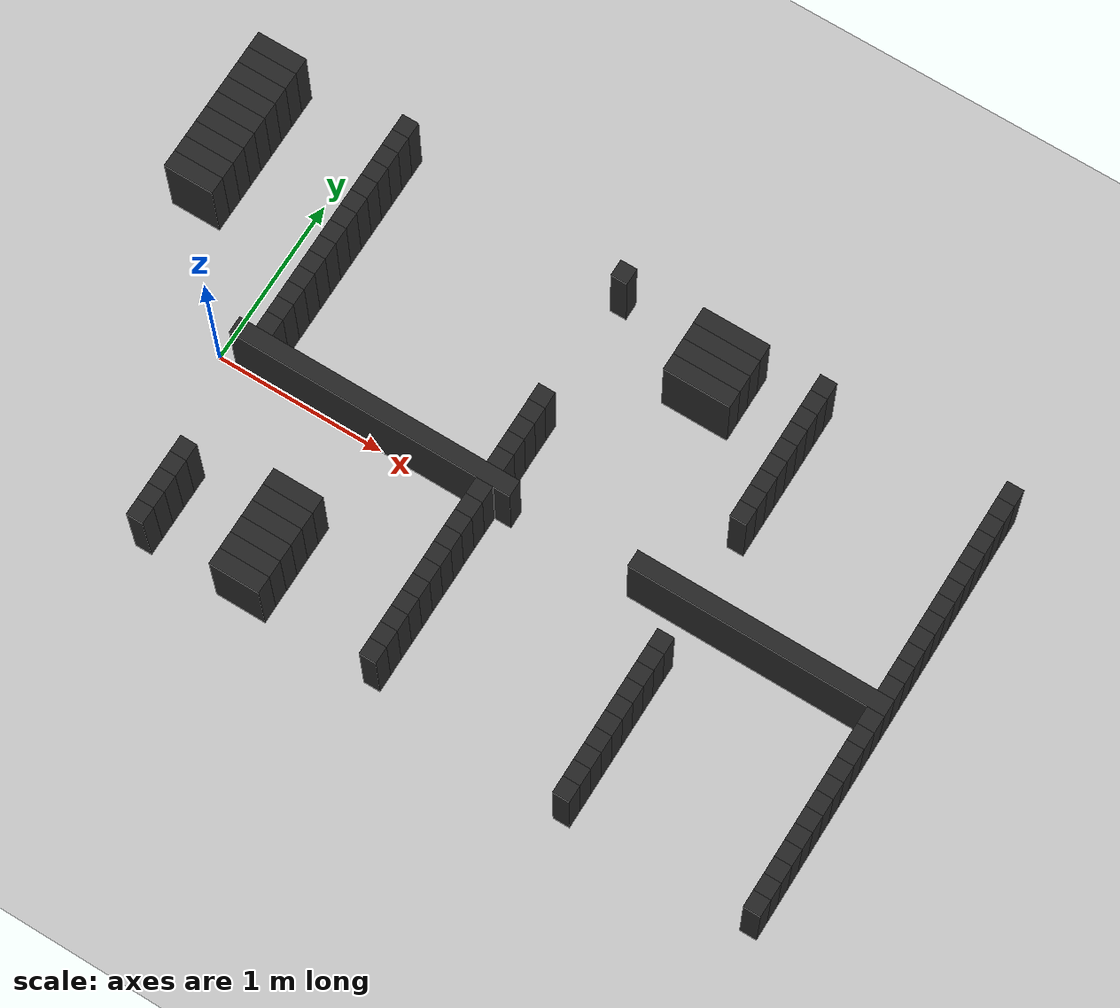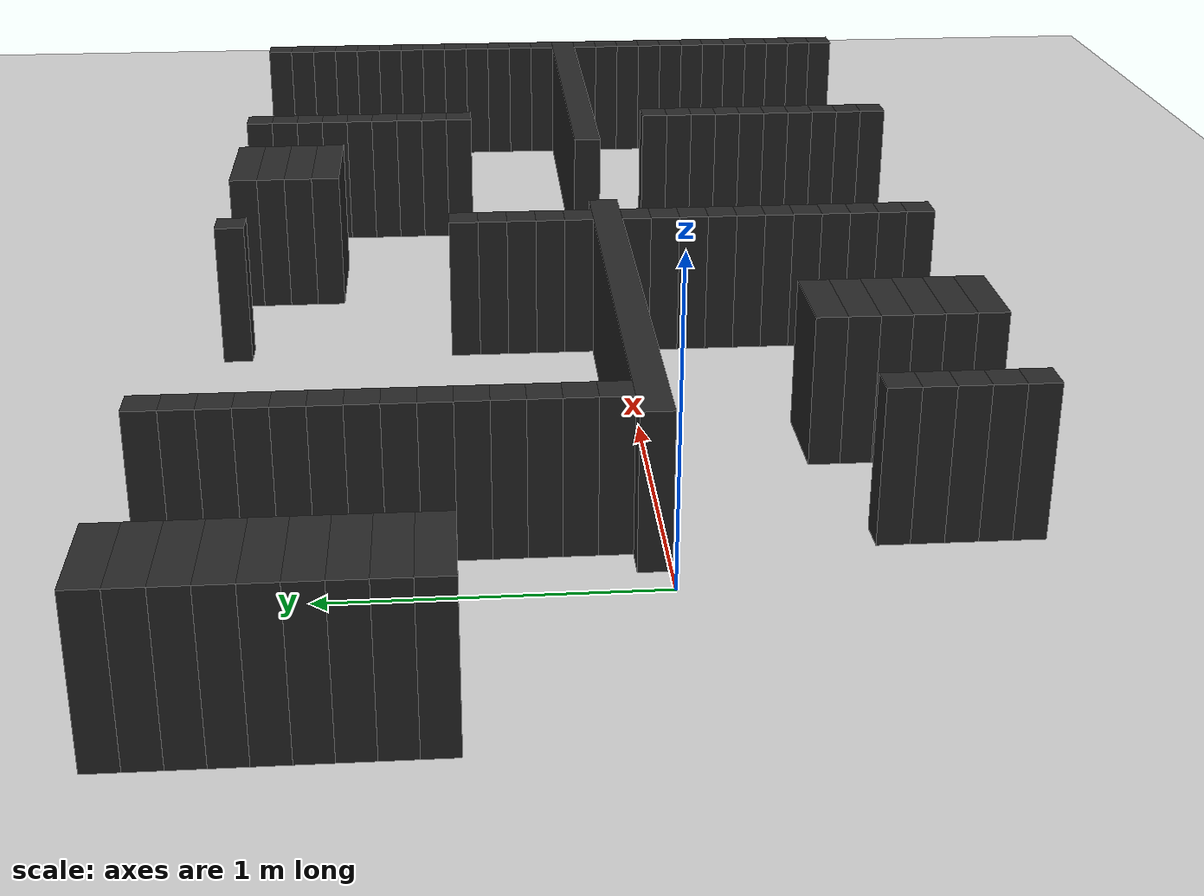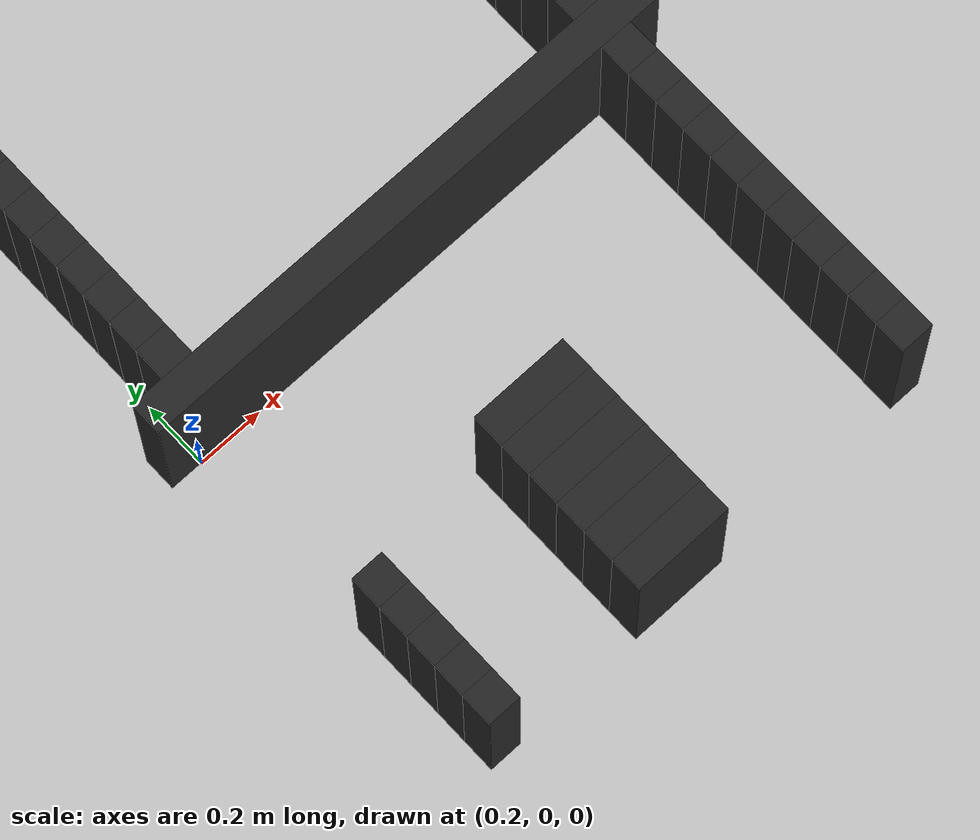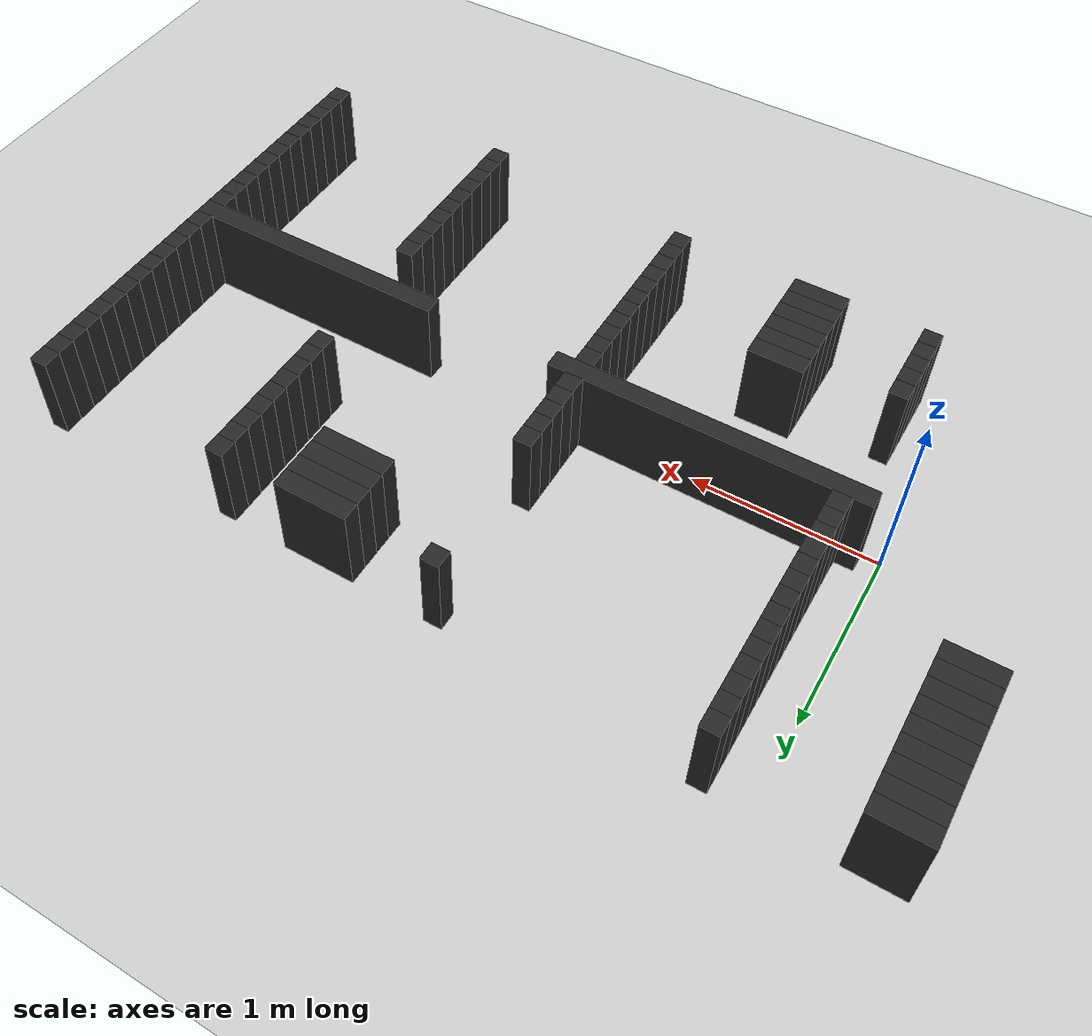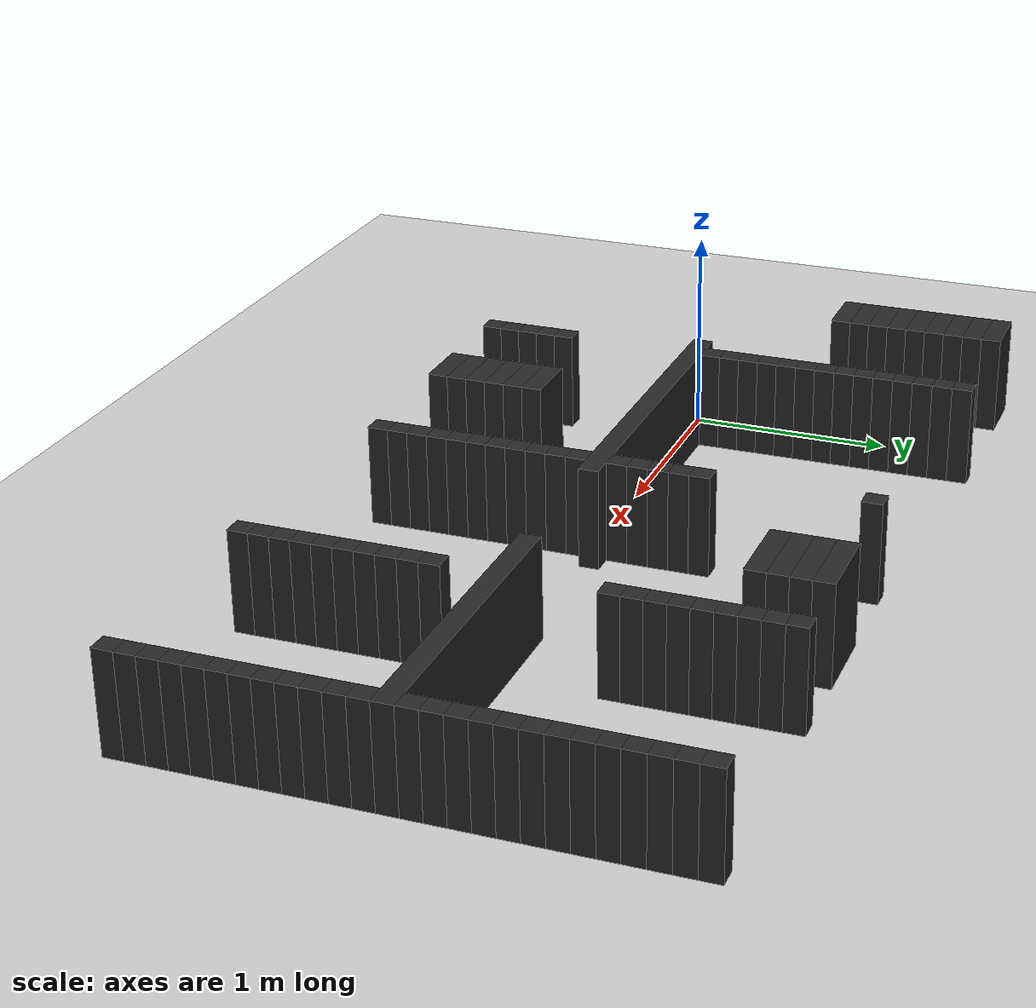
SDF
<sdf version="1.6">
 <world name="stress_maze_world">
  <include><uri>model://sun</uri></include>
  <include><uri>model://ground_plane</uri></include>
  <model name="wall_028_068">
   <static>true</static>
   <pose>2.85000 -1.15000 0.25 0 0 0</pose>
   <link name="link">
    <collision name="collision"><geometry><box><size>0.10000 0.10000 0.5</size></box></geometry></collision>
    <visual name="visual">
     <geometry><box><size>0.10000 0.10000 0.5</size></box></geometry>
     <material><ambient>0.12 0.12 0.12 1</ambient><diffuse>0.15 0.15 0.15 1</diffuse></material>
    </visual>
   </link>
  </model>
  <model name="wall_028_079">
   <static>true</static>
   <pose>3.95000 -1.15000 0.25 0 0 0</pose>
   <link name="link">
    <collision name="collision"><geometry><box><size>0.10000 0.10000 0.5</size></box></geometry></collision>
    <visual name="visual">
     <geometry><box><size>0.10000 0.10000 0.5</size></box></geometry>
     <material><ambient>0.12 0.12 0.12 1</ambient><diffuse>0.15 0.15 0.15 1</diffuse></material>
    </visual>
   </link>
  </model>
  <model name="wall_029_042">
   <static>true</static>
   <pose>0.25000 -1.05000 0.25 0 0 0</pose>
   <link name="link">
    <collision name="collision"><geometry><box><size>0.10000 0.10000 0.5</size></box></geometry></collision>
    <visual name="visual">
     <geometry><box><size>0.10000 0.10000 0.5</size></box></geometry>
     <material><ambient>0.12 0.12 0.12 1</ambient><diffuse>0.15 0.15 0.15 1</diffuse></material>
    </visual>
   </link>
  </model>
  <model name="wall_029_047">
   <static>true</static>
   <pose>0.85000 -1.05000 0.25 0 0 0</pose>
   <link name="link">
    <collision name="collision"><geometry><box><size>0.30000 0.10000 0.5</size></box></geometry></collision>
    <visual name="visual">
     <geometry><box><size>0.30000 0.10000 0.5</size></box></geometry>
     <material><ambient>0.12 0.12 0.12 1</ambient><diffuse>0.15 0.15 0.15 1</diffuse></material>
    </visual>
   </link>
  </model>
  <model name="wall_029_056">
   <static>true</static>
   <pose>1.65000 -1.05000 0.25 0 0 0</pose>
   <link name="link">
    <collision name="collision"><geometry><box><size>0.10000 0.10000 0.5</size></box></geometry></collision>
    <visual name="visual">
     <geometry><box><size>0.10000 0.10000 0.5</size></box></geometry>
     <material><ambient>0.12 0.12 0.12 1</ambient><diffuse>0.15 0.15 0.15 1</diffuse></material>
    </visual>
   </link>
  </model>
  <model name="wall_029_068">
   <static>true</static>
   <pose>2.85000 -1.05000 0.25 0 0 0</pose>
   <link name="link">
    <collision name="collision"><geometry><box><size>0.10000 0.10000 0.5</size></box></geometry></collision>
    <visual name="visual">
     <geometry><box><size>0.10000 0.10000 0.5</size></box></geometry>
     <material><ambient>0.12 0.12 0.12 1</ambient><diffuse>0.15 0.15 0.15 1</diffuse></material>
    </visual>
   </link>
  </model>
  <model name="wall_029_079">
   <static>true</static>
   <pose>3.95000 -1.05000 0.25 0 0 0</pose>
   <link name="link">
    <collision name="collision"><geometry><box><size>0.10000 0.10000 0.5</size></box></geometry></collision>
    <visual name="visual">
     <geometry><box><size>0.10000 0.10000 0.5</size></box></geometry>
     <material><ambient>0.12 0.12 0.12 1</ambient><diffuse>0.15 0.15 0.15 1</diffuse></material>
    </visual>
   </link>
  </model>
  <model name="wall_030_042">
   <static>true</static>
   <pose>0.25000 -0.95000 0.25 0 0 0</pose>
   <link name="link">
    <collision name="collision"><geometry><box><size>0.10000 0.10000 0.5</size></box></geometry></collision>
    <visual name="visual">
     <geometry><box><size>0.10000 0.10000 0.5</size></box></geometry>
     <material><ambient>0.12 0.12 0.12 1</ambient><diffuse>0.15 0.15 0.15 1</diffuse></material>
    </visual>
   </link>
  </model>
  <model name="wall_030_047">
   <static>true</static>
   <pose>0.85000 -0.95000 0.25 0 0 0</pose>
   <link name="link">
    <collision name="collision"><geometry><box><size>0.30000 0.10000 0.5</size></box></geometry></collision>
    <visual name="visual">
     <geometry><box><size>0.30000 0.10000 0.5</size></box></geometry>
     <material><ambient>0.12 0.12 0.12 1</ambient><diffuse>0.15 0.15 0.15 1</diffuse></material>
    </visual>
   </link>
  </model>
  <model name="wall_030_056">
   <static>true</static>
   <pose>1.65000 -0.95000 0.25 0 0 0</pose>
   <link name="link">
    <collision name="collision"><geometry><box><size>0.10000 0.10000 0.5</size></box></geometry></collision>
    <visual name="visual">
     <geometry><box><size>0.10000 0.10000 0.5</size></box></geometry>
     <material><ambient>0.12 0.12 0.12 1</ambient><diffuse>0.15 0.15 0.15 1</diffuse></material>
    </visual>
   </link>
  </model>
  <model name="wall_030_068">
   <static>true</static>
   <pose>2.85000 -0.95000 0.25 0 0 0</pose>
   <link name="link">
    <collision name="collision"><geometry><box><size>0.10000 0.10000 0.5</size></box></geometry></collision>
    <visual name="visual">
     <geometry><box><size>0.10000 0.10000 0.5</size></box></geometry>
     <material><ambient>0.12 0.12 0.12 1</ambient><diffuse>0.15 0.15 0.15 1</diffuse></material>
    </visual>
   </link>
  </model>
  <model name="wall_030_079">
   <static>true</static>
   <pose>3.95000 -0.95000 0.25 0 0 0</pose>
   <link name="link">
    <collision name="collision"><geometry><box><size>0.10000 0.10000 0.5</size></box></geometry></collision>
    <visual name="visual">
     <geometry><box><size>0.10000 0.10000 0.5</size></box></geometry>
     <material><ambient>0.12 0.12 0.12 1</ambient><diffuse>0.15 0.15 0.15 1</diffuse></material>
    </visual>
   </link>
  </model>
  <model name="wall_031_042">
   <static>true</static>
   <pose>0.25000 -0.85000 0.25 0 0 0</pose>
   <link name="link">
    <collision name="collision"><geometry><box><size>0.10000 0.10000 0.5</size></box></geometry></collision>
    <visual name="visual">
     <geometry><box><size>0.10000 0.10000 0.5</size></box></geometry>
     <material><ambient>0.12 0.12 0.12 1</ambient><diffuse>0.15 0.15 0.15 1</diffuse></material>
    </visual>
   </link>
  </model>
  <model name="wall_031_047">
   <static>true</static>
   <pose>0.85000 -0.85000 0.25 0 0 0</pose>
   <link name="link">
    <collision name="collision"><geometry><box><size>0.30000 0.10000 0.5</size></box></geometry></collision>
    <visual name="visual">
     <geometry><box><size>0.30000 0.10000 0.5</size></box></geometry>
     <material><ambient>0.12 0.12 0.12 1</ambient><diffuse>0.15 0.15 0.15 1</diffuse></material>
    </visual>
   </link>
  </model>
  <model name="wall_031_056">
   <static>true</static>
   <pose>1.65000 -0.85000 0.25 0 0 0</pose>
   <link name="link">
    <collision name="collision"><geometry><box><size>0.10000 0.10000 0.5</size></box></geometry></collision>
    <visual name="visual">
     <geometry><box><size>0.10000 0.10000 0.5</size></box></geometry>
     <material><ambient>0.12 0.12 0.12 1</ambient><diffuse>0.15 0.15 0.15 1</diffuse></material>
    </visual>
   </link>
  </model>
  <model name="wall_031_068">
   <static>true</static>
   <pose>2.85000 -0.85000 0.25 0 0 0</pose>
   <link name="link">
    <collision name="collision"><geometry><box><size>0.10000 0.10000 0.5</size></box></geometry></collision>
    <visual name="visual">
     <geometry><box><size>0.10000 0.10000 0.5</size></box></geometry>
     <material><ambient>0.12 0.12 0.12 1</ambient><diffuse>0.15 0.15 0.15 1</diffuse></material>
    </visual>
   </link>
  </model>
  <model name="wall_031_079">
   <static>true</static>
   <pose>3.95000 -0.85000 0.25 0 0 0</pose>
   <link name="link">
    <collision name="collision"><geometry><box><size>0.10000 0.10000 0.5</size></box></geometry></collision>
    <visual name="visual">
     <geometry><box><size>0.10000 0.10000 0.5</size></box></geometry>
     <material><ambient>0.12 0.12 0.12 1</ambient><diffuse>0.15 0.15 0.15 1</diffuse></material>
    </visual>
   </link>
  </model>
  <model name="wall_032_042">
   <static>true</static>
   <pose>0.25000 -0.75000 0.25 0 0 0</pose>
   <link name="link">
    <collision name="collision"><geometry><box><size>0.10000 0.10000 0.5</size></box></geometry></collision>
    <visual name="visual">
     <geometry><box><size>0.10000 0.10000 0.5</size></box></geometry>
     <material><ambient>0.12 0.12 0.12 1</ambient><diffuse>0.15 0.15 0.15 1</diffuse></material>
    </visual>
   </link>
  </model>
  <model name="wall_032_047">
   <static>true</static>
   <pose>0.85000 -0.75000 0.25 0 0 0</pose>
   <link name="link">
    <collision name="collision"><geometry><box><size>0.30000 0.10000 0.5</size></box></geometry></collision>
    <visual name="visual">
     <geometry><box><size>0.30000 0.10000 0.5</size></box></geometry>
     <material><ambient>0.12 0.12 0.12 1</ambient><diffuse>0.15 0.15 0.15 1</diffuse></material>
    </visual>
   </link>
  </model>
  <model name="wall_032_056">
   <static>true</static>
   <pose>1.65000 -0.75000 0.25 0 0 0</pose>
   <link name="link">
    <collision name="collision"><geometry><box><size>0.10000 0.10000 0.5</size></box></geometry></collision>
    <visual name="visual">
     <geometry><box><size>0.10000 0.10000 0.5</size></box></geometry>
     <material><ambient>0.12 0.12 0.12 1</ambient><diffuse>0.15 0.15 0.15 1</diffuse></material>
    </visual>
   </link>
  </model>
  <model name="wall_032_068">
   <static>true</static>
   <pose>2.85000 -0.75000 0.25 0 0 0</pose>
   <link name="link">
    <collision name="collision"><geometry><box><size>0.10000 0.10000 0.5</size></box></geometry></collision>
    <visual name="visual">
     <geometry><box><size>0.10000 0.10000 0.5</size></box></geometry>
     <material><ambient>0.12 0.12 0.12 1</ambient><diffuse>0.15 0.15 0.15 1</diffuse></material>
    </visual>
   </link>
  </model>
  <model name="wall_032_079">
   <static>true</static>
   <pose>3.95000 -0.75000 0.25 0 0 0</pose>
   <link name="link">
    <collision name="collision"><geometry><box><size>0.10000 0.10000 0.5</size></box></geometry></collision>
    <visual name="visual">
     <geometry><box><size>0.10000 0.10000 0.5</size></box></geometry>
     <material><ambient>0.12 0.12 0.12 1</ambient><diffuse>0.15 0.15 0.15 1</diffuse></material>
    </visual>
   </link>
  </model>
  <model name="wall_033_042">
   <static>true</static>
   <pose>0.25000 -0.65000 0.25 0 0 0</pose>
   <link name="link">
    <collision name="collision"><geometry><box><size>0.10000 0.10000 0.5</size></box></geometry></collision>
    <visual name="visual">
     <geometry><box><size>0.10000 0.10000 0.5</size></box></geometry>
     <material><ambient>0.12 0.12 0.12 1</ambient><diffuse>0.15 0.15 0.15 1</diffuse></material>
    </visual>
   </link>
  </model>
  <model name="wall_033_047">
   <static>true</static>
   <pose>0.85000 -0.65000 0.25 0 0 0</pose>
   <link name="link">
    <collision name="collision"><geometry><box><size>0.30000 0.10000 0.5</size></box></geometry></collision>
    <visual name="visual">
     <geometry><box><size>0.30000 0.10000 0.5</size></box></geometry>
     <material><ambient>0.12 0.12 0.12 1</ambient><diffuse>0.15 0.15 0.15 1</diffuse></material>
    </visual>
   </link>
  </model>
  <model name="wall_033_056">
   <static>true</static>
   <pose>1.65000 -0.65000 0.25 0 0 0</pose>
   <link name="link">
    <collision name="collision"><geometry><box><size>0.10000 0.10000 0.5</size></box></geometry></collision>
    <visual name="visual">
     <geometry><box><size>0.10000 0.10000 0.5</size></box></geometry>
     <material><ambient>0.12 0.12 0.12 1</ambient><diffuse>0.15 0.15 0.15 1</diffuse></material>
    </visual>
   </link>
  </model>
  <model name="wall_033_068">
   <static>true</static>
   <pose>2.85000 -0.65000 0.25 0 0 0</pose>
   <link name="link">
    <collision name="collision"><geometry><box><size>0.10000 0.10000 0.5</size></box></geometry></collision>
    <visual name="visual">
     <geometry><box><size>0.10000 0.10000 0.5</size></box></geometry>
     <material><ambient>0.12 0.12 0.12 1</ambient><diffuse>0.15 0.15 0.15 1</diffuse></material>
    </visual>
   </link>
  </model>
  <model name="wall_033_079">
   <static>true</static>
   <pose>3.95000 -0.65000 0.25 0 0 0</pose>
   <link name="link">
    <collision name="collision"><geometry><box><size>0.10000 0.10000 0.5</size></box></geometry></collision>
    <visual name="visual">
     <geometry><box><size>0.10000 0.10000 0.5</size></box></geometry>
     <material><ambient>0.12 0.12 0.12 1</ambient><diffuse>0.15 0.15 0.15 1</diffuse></material>
    </visual>
   </link>
  </model>
  <model name="wall_034_047">
   <static>true</static>
   <pose>0.85000 -0.55000 0.25 0 0 0</pose>
   <link name="link">
    <collision name="collision"><geometry><box><size>0.30000 0.10000 0.5</size></box></geometry></collision>
    <visual name="visual">
     <geometry><box><size>0.30000 0.10000 0.5</size></box></geometry>
     <material><ambient>0.12 0.12 0.12 1</ambient><diffuse>0.15 0.15 0.15 1</diffuse></material>
    </visual>
   </link>
  </model>
  <model name="wall_034_056">
   <static>true</static>
   <pose>1.65000 -0.55000 0.25 0 0 0</pose>
   <link name="link">
    <collision name="collision"><geometry><box><size>0.10000 0.10000 0.5</size></box></geometry></collision>
    <visual name="visual">
     <geometry><box><size>0.10000 0.10000 0.5</size></box></geometry>
     <material><ambient>0.12 0.12 0.12 1</ambient><diffuse>0.15 0.15 0.15 1</diffuse></material>
    </visual>
   </link>
  </model>
  <model name="wall_034_068">
   <static>true</static>
   <pose>2.85000 -0.55000 0.25 0 0 0</pose>
   <link name="link">
    <collision name="collision"><geometry><box><size>0.10000 0.10000 0.5</size></box></geometry></collision>
    <visual name="visual">
     <geometry><box><size>0.10000 0.10000 0.5</size></box></geometry>
     <material><ambient>0.12 0.12 0.12 1</ambient><diffuse>0.15 0.15 0.15 1</diffuse></material>
    </visual>
   </link>
  </model>
  <model name="wall_034_079">
   <static>true</static>
   <pose>3.95000 -0.55000 0.25 0 0 0</pose>
   <link name="link">
    <collision name="collision"><geometry><box><size>0.10000 0.10000 0.5</size></box></geometry></collision>
    <visual name="visual">
     <geometry><box><size>0.10000 0.10000 0.5</size></box></geometry>
     <material><ambient>0.12 0.12 0.12 1</ambient><diffuse>0.15 0.15 0.15 1</diffuse></material>
    </visual>
   </link>
  </model>
  <model name="wall_035_056">
   <static>true</static>
   <pose>1.65000 -0.45000 0.25 0 0 0</pose>
   <link name="link">
    <collision name="collision"><geometry><box><size>0.10000 0.10000 0.5</size></box></geometry></collision>
    <visual name="visual">
     <geometry><box><size>0.10000 0.10000 0.5</size></box></geometry>
     <material><ambient>0.12 0.12 0.12 1</ambient><diffuse>0.15 0.15 0.15 1</diffuse></material>
    </visual>
   </link>
  </model>
  <model name="wall_035_068">
   <static>true</static>
   <pose>2.85000 -0.45000 0.25 0 0 0</pose>
   <link name="link">
    <collision name="collision"><geometry><box><size>0.10000 0.10000 0.5</size></box></geometry></collision>
    <visual name="visual">
     <geometry><box><size>0.10000 0.10000 0.5</size></box></geometry>
     <material><ambient>0.12 0.12 0.12 1</ambient><diffuse>0.15 0.15 0.15 1</diffuse></material>
    </visual>
   </link>
  </model>
  <model name="wall_035_079">
   <static>true</static>
   <pose>3.95000 -0.45000 0.25 0 0 0</pose>
   <link name="link">
    <collision name="collision"><geometry><box><size>0.10000 0.10000 0.5</size></box></geometry></collision>
    <visual name="visual">
     <geometry><box><size>0.10000 0.10000 0.5</size></box></geometry>
     <material><ambient>0.12 0.12 0.12 1</ambient><diffuse>0.15 0.15 0.15 1</diffuse></material>
    </visual>
   </link>
  </model>
  <model name="wall_036_056">
   <static>true</static>
   <pose>1.65000 -0.35000 0.25 0 0 0</pose>
   <link name="link">
    <collision name="collision"><geometry><box><size>0.10000 0.10000 0.5</size></box></geometry></collision>
    <visual name="visual">
     <geometry><box><size>0.10000 0.10000 0.5</size></box></geometry>
     <material><ambient>0.12 0.12 0.12 1</ambient><diffuse>0.15 0.15 0.15 1</diffuse></material>
    </visual>
   </link>
  </model>
  <model name="wall_036_068">
   <static>true</static>
   <pose>2.85000 -0.35000 0.25 0 0 0</pose>
   <link name="link">
    <collision name="collision"><geometry><box><size>0.10000 0.10000 0.5</size></box></geometry></collision>
    <visual name="visual">
     <geometry><box><size>0.10000 0.10000 0.5</size></box></geometry>
     <material><ambient>0.12 0.12 0.12 1</ambient><diffuse>0.15 0.15 0.15 1</diffuse></material>
    </visual>
   </link>
  </model>
  <model name="wall_036_079">
   <static>true</static>
   <pose>3.95000 -0.35000 0.25 0 0 0</pose>
   <link name="link">
    <collision name="collision"><geometry><box><size>0.10000 0.10000 0.5</size></box></geometry></collision>
    <visual name="visual">
     <geometry><box><size>0.10000 0.10000 0.5</size></box></geometry>
     <material><ambient>0.12 0.12 0.12 1</ambient><diffuse>0.15 0.15 0.15 1</diffuse></material>
    </visual>
   </link>
  </model>
  <model name="wall_037_056">
   <static>true</static>
   <pose>1.65000 -0.25000 0.25 0 0 0</pose>
   <link name="link">
    <collision name="collision"><geometry><box><size>0.10000 0.10000 0.5</size></box></geometry></collision>
    <visual name="visual">
     <geometry><box><size>0.10000 0.10000 0.5</size></box></geometry>
     <material><ambient>0.12 0.12 0.12 1</ambient><diffuse>0.15 0.15 0.15 1</diffuse></material>
    </visual>
   </link>
  </model>
  <model name="wall_037_068">
   <static>true</static>
   <pose>2.85000 -0.25000 0.25 0 0 0</pose>
   <link name="link">
    <collision name="collision"><geometry><box><size>0.10000 0.10000 0.5</size></box></geometry></collision>
    <visual name="visual">
     <geometry><box><size>0.10000 0.10000 0.5</size></box></geometry>
     <material><ambient>0.12 0.12 0.12 1</ambient><diffuse>0.15 0.15 0.15 1</diffuse></material>
    </visual>
   </link>
  </model>
  <model name="wall_037_079">
   <static>true</static>
   <pose>3.95000 -0.25000 0.25 0 0 0</pose>
   <link name="link">
    <collision name="collision"><geometry><box><size>0.10000 0.10000 0.5</size></box></geometry></collision>
    <visual name="visual">
     <geometry><box><size>0.10000 0.10000 0.5</size></box></geometry>
     <material><ambient>0.12 0.12 0.12 1</ambient><diffuse>0.15 0.15 0.15 1</diffuse></material>
    </visual>
   </link>
  </model>
  <model name="wall_038_056">
   <static>true</static>
   <pose>1.65000 -0.15000 0.25 0 0 0</pose>
   <link name="link">
    <collision name="collision"><geometry><box><size>0.10000 0.10000 0.5</size></box></geometry></collision>
    <visual name="visual">
     <geometry><box><size>0.10000 0.10000 0.5</size></box></geometry>
     <material><ambient>0.12 0.12 0.12 1</ambient><diffuse>0.15 0.15 0.15 1</diffuse></material>
    </visual>
   </link>
  </model>
  <model name="wall_038_079">
   <static>true</static>
   <pose>3.95000 -0.15000 0.25 0 0 0</pose>
   <link name="link">
    <collision name="collision"><geometry><box><size>0.10000 0.10000 0.5</size></box></geometry></collision>
    <visual name="visual">
     <geometry><box><size>0.10000 0.10000 0.5</size></box></geometry>
     <material><ambient>0.12 0.12 0.12 1</ambient><diffuse>0.15 0.15 0.15 1</diffuse></material>
    </visual>
   </link>
  </model>
  <model name="wall_039_056">
   <static>true</static>
   <pose>1.65000 -0.05000 0.25 0 0 0</pose>
   <link name="link">
    <collision name="collision"><geometry><box><size>0.10000 0.10000 0.5</size></box></geometry></collision>
    <visual name="visual">
     <geometry><box><size>0.10000 0.10000 0.5</size></box></geometry>
     <material><ambient>0.12 0.12 0.12 1</ambient><diffuse>0.15 0.15 0.15 1</diffuse></material>
    </visual>
   </link>
  </model>
  <model name="wall_039_079">
   <static>true</static>
   <pose>3.95000 -0.05000 0.25 0 0 0</pose>
   <link name="link">
    <collision name="collision"><geometry><box><size>0.10000 0.10000 0.5</size></box></geometry></collision>
    <visual name="visual">
     <geometry><box><size>0.10000 0.10000 0.5</size></box></geometry>
     <material><ambient>0.12 0.12 0.12 1</ambient><diffuse>0.15 0.15 0.15 1</diffuse></material>
    </visual>
   </link>
  </model>
  <model name="wall_040_041">
   <static>true</static>
   <pose>0.95000 0.05000 0.25 0 0 0</pose>
   <link name="link">
    <collision name="collision"><geometry><box><size>1.70000 0.10000 0.5</size></box></geometry></collision>
    <visual name="visual">
     <geometry><box><size>1.70000 0.10000 0.5</size></box></geometry>
     <material><ambient>0.12 0.12 0.12 1</ambient><diffuse>0.15 0.15 0.15 1</diffuse></material>
    </visual>
   </link>
  </model>
  <model name="wall_040_065">
   <static>true</static>
   <pose>3.25000 0.05000 0.25 0 0 0</pose>
   <link name="link">
    <collision name="collision"><geometry><box><size>1.50000 0.10000 0.5</size></box></geometry></collision>
    <visual name="visual">
     <geometry><box><size>1.50000 0.10000 0.5</size></box></geometry>
     <material><ambient>0.12 0.12 0.12 1</ambient><diffuse>0.15 0.15 0.15 1</diffuse></material>
    </visual>
   </link>
  </model>
  <model name="wall_041_042">
   <static>true</static>
   <pose>0.25000 0.15000 0.25 0 0 0</pose>
   <link name="link">
    <collision name="collision"><geometry><box><size>0.10000 0.10000 0.5</size></box></geometry></collision>
    <visual name="visual">
     <geometry><box><size>0.10000 0.10000 0.5</size></box></geometry>
     <material><ambient>0.12 0.12 0.12 1</ambient><diffuse>0.15 0.15 0.15 1</diffuse></material>
    </visual>
   </link>
  </model>
  <model name="wall_041_056">
   <static>true</static>
   <pose>1.65000 0.15000 0.25 0 0 0</pose>
   <link name="link">
    <collision name="collision"><geometry><box><size>0.10000 0.10000 0.5</size></box></geometry></collision>
    <visual name="visual">
     <geometry><box><size>0.10000 0.10000 0.5</size></box></geometry>
     <material><ambient>0.12 0.12 0.12 1</ambient><diffuse>0.15 0.15 0.15 1</diffuse></material>
    </visual>
   </link>
  </model>
  <model name="wall_041_079">
   <static>true</static>
   <pose>3.95000 0.15000 0.25 0 0 0</pose>
   <link name="link">
    <collision name="collision"><geometry><box><size>0.10000 0.10000 0.5</size></box></geometry></collision>
    <visual name="visual">
     <geometry><box><size>0.10000 0.10000 0.5</size></box></geometry>
     <material><ambient>0.12 0.12 0.12 1</ambient><diffuse>0.15 0.15 0.15 1</diffuse></material>
    </visual>
   </link>
  </model>
  <model name="wall_042_042">
   <static>true</static>
   <pose>0.25000 0.25000 0.25 0 0 0</pose>
   <link name="link">
    <collision name="collision"><geometry><box><size>0.10000 0.10000 0.5</size></box></geometry></collision>
    <visual name="visual">
     <geometry><box><size>0.10000 0.10000 0.5</size></box></geometry>
     <material><ambient>0.12 0.12 0.12 1</ambient><diffuse>0.15 0.15 0.15 1</diffuse></material>
    </visual>
   </link>
  </model>
  <model name="wall_042_056">
   <static>true</static>
   <pose>1.65000 0.25000 0.25 0 0 0</pose>
   <link name="link">
    <collision name="collision"><geometry><box><size>0.10000 0.10000 0.5</size></box></geometry></collision>
    <visual name="visual">
     <geometry><box><size>0.10000 0.10000 0.5</size></box></geometry>
     <material><ambient>0.12 0.12 0.12 1</ambient><diffuse>0.15 0.15 0.15 1</diffuse></material>
    </visual>
   </link>
  </model>
  <model name="wall_042_079">
   <static>true</static>
   <pose>3.95000 0.25000 0.25 0 0 0</pose>
   <link name="link">
    <collision name="collision"><geometry><box><size>0.10000 0.10000 0.5</size></box></geometry></collision>
    <visual name="visual">
     <geometry><box><size>0.10000 0.10000 0.5</size></box></geometry>
     <material><ambient>0.12 0.12 0.12 1</ambient><diffuse>0.15 0.15 0.15 1</diffuse></material>
    </visual>
   </link>
  </model>
  <model name="wall_043_042">
   <static>true</static>
   <pose>0.25000 0.35000 0.25 0 0 0</pose>
   <link name="link">
    <collision name="collision"><geometry><box><size>0.10000 0.10000 0.5</size></box></geometry></collision>
    <visual name="visual">
     <geometry><box><size>0.10000 0.10000 0.5</size></box></geometry>
     <material><ambient>0.12 0.12 0.12 1</ambient><diffuse>0.15 0.15 0.15 1</diffuse></material>
    </visual>
   </link>
  </model>
  <model name="wall_043_056">
   <static>true</static>
   <pose>1.65000 0.35000 0.25 0 0 0</pose>
   <link name="link">
    <collision name="collision"><geometry><box><size>0.10000 0.10000 0.5</size></box></geometry></collision>
    <visual name="visual">
     <geometry><box><size>0.10000 0.10000 0.5</size></box></geometry>
     <material><ambient>0.12 0.12 0.12 1</ambient><diffuse>0.15 0.15 0.15 1</diffuse></material>
    </visual>
   </link>
  </model>
  <model name="wall_043_079">
   <static>true</static>
   <pose>3.95000 0.35000 0.25 0 0 0</pose>
   <link name="link">
    <collision name="collision"><geometry><box><size>0.10000 0.10000 0.5</size></box></geometry></collision>
    <visual name="visual">
     <geometry><box><size>0.10000 0.10000 0.5</size></box></geometry>
     <material><ambient>0.12 0.12 0.12 1</ambient><diffuse>0.15 0.15 0.15 1</diffuse></material>
    </visual>
   </link>
  </model>
  <model name="wall_044_042">
   <static>true</static>
   <pose>0.25000 0.45000 0.25 0 0 0</pose>
   <link name="link">
    <collision name="collision"><geometry><box><size>0.10000 0.10000 0.5</size></box></geometry></collision>
    <visual name="visual">
     <geometry><box><size>0.10000 0.10000 0.5</size></box></geometry>
     <material><ambient>0.12 0.12 0.12 1</ambient><diffuse>0.15 0.15 0.15 1</diffuse></material>
    </visual>
   </link>
  </model>
  <model name="wall_044_056">
   <static>true</static>
   <pose>1.65000 0.45000 0.25 0 0 0</pose>
   <link name="link">
    <collision name="collision"><geometry><box><size>0.10000 0.10000 0.5</size></box></geometry></collision>
    <visual name="visual">
     <geometry><box><size>0.10000 0.10000 0.5</size></box></geometry>
     <material><ambient>0.12 0.12 0.12 1</ambient><diffuse>0.15 0.15 0.15 1</diffuse></material>
    </visual>
   </link>
  </model>
  <model name="wall_044_079">
   <static>true</static>
   <pose>3.95000 0.45000 0.25 0 0 0</pose>
   <link name="link">
    <collision name="collision"><geometry><box><size>0.10000 0.10000 0.5</size></box></geometry></collision>
    <visual name="visual">
     <geometry><box><size>0.10000 0.10000 0.5</size></box></geometry>
     <material><ambient>0.12 0.12 0.12 1</ambient><diffuse>0.15 0.15 0.15 1</diffuse></material>
    </visual>
   </link>
  </model>
  <model name="wall_045_042">
   <static>true</static>
   <pose>0.25000 0.55000 0.25 0 0 0</pose>
   <link name="link">
    <collision name="collision"><geometry><box><size>0.10000 0.10000 0.5</size></box></geometry></collision>
    <visual name="visual">
     <geometry><box><size>0.10000 0.10000 0.5</size></box></geometry>
     <material><ambient>0.12 0.12 0.12 1</ambient><diffuse>0.15 0.15 0.15 1</diffuse></material>
    </visual>
   </link>
  </model>
  <model name="wall_045_056">
   <static>true</static>
   <pose>1.65000 0.55000 0.25 0 0 0</pose>
   <link name="link">
    <collision name="collision"><geometry><box><size>0.10000 0.10000 0.5</size></box></geometry></collision>
    <visual name="visual">
     <geometry><box><size>0.10000 0.10000 0.5</size></box></geometry>
     <material><ambient>0.12 0.12 0.12 1</ambient><diffuse>0.15 0.15 0.15 1</diffuse></material>
    </visual>
   </link>
  </model>
  <model name="wall_045_068">
   <static>true</static>
   <pose>2.85000 0.55000 0.25 0 0 0</pose>
   <link name="link">
    <collision name="collision"><geometry><box><size>0.10000 0.10000 0.5</size></box></geometry></collision>
    <visual name="visual">
     <geometry><box><size>0.10000 0.10000 0.5</size></box></geometry>
     <material><ambient>0.12 0.12 0.12 1</ambient><diffuse>0.15 0.15 0.15 1</diffuse></material>
    </visual>
   </link>
  </model>
  <model name="wall_045_079">
   <static>true</static>
   <pose>3.95000 0.55000 0.25 0 0 0</pose>
   <link name="link">
    <collision name="collision"><geometry><box><size>0.10000 0.10000 0.5</size></box></geometry></collision>
    <visual name="visual">
     <geometry><box><size>0.10000 0.10000 0.5</size></box></geometry>
     <material><ambient>0.12 0.12 0.12 1</ambient><diffuse>0.15 0.15 0.15 1</diffuse></material>
    </visual>
   </link>
  </model>
  <model name="wall_046_033">
   <static>true</static>
   <pose>-0.55000 0.65000 0.25 0 0 0</pose>
   <link name="link">
    <collision name="collision"><geometry><box><size>0.30000 0.10000 0.5</size></box></geometry></collision>
    <visual name="visual">
     <geometry><box><size>0.30000 0.10000 0.5</size></box></geometry>
     <material><ambient>0.12 0.12 0.12 1</ambient><diffuse>0.15 0.15 0.15 1</diffuse></material>
    </visual>
   </link>
  </model>
  <model name="wall_046_042">
   <static>true</static>
   <pose>0.25000 0.65000 0.25 0 0 0</pose>
   <link name="link">
    <collision name="collision"><geometry><box><size>0.10000 0.10000 0.5</size></box></geometry></collision>
    <visual name="visual">
     <geometry><box><size>0.10000 0.10000 0.5</size></box></geometry>
     <material><ambient>0.12 0.12 0.12 1</ambient><diffuse>0.15 0.15 0.15 1</diffuse></material>
    </visual>
   </link>
  </model>
  <model name="wall_046_068">
   <static>true</static>
   <pose>2.85000 0.65000 0.25 0 0 0</pose>
   <link name="link">
    <collision name="collision"><geometry><box><size>0.10000 0.10000 0.5</size></box></geometry></collision>
    <visual name="visual">
     <geometry><box><size>0.10000 0.10000 0.5</size></box></geometry>
     <material><ambient>0.12 0.12 0.12 1</ambient><diffuse>0.15 0.15 0.15 1</diffuse></material>
    </visual>
   </link>
  </model>
  <model name="wall_046_079">
   <static>true</static>
   <pose>3.95000 0.65000 0.25 0 0 0</pose>
   <link name="link">
    <collision name="collision"><geometry><box><size>0.10000 0.10000 0.5</size></box></geometry></collision>
    <visual name="visual">
     <geometry><box><size>0.10000 0.10000 0.5</size></box></geometry>
     <material><ambient>0.12 0.12 0.12 1</ambient><diffuse>0.15 0.15 0.15 1</diffuse></material>
    </visual>
   </link>
  </model>
  <model name="wall_047_033">
   <static>true</static>
   <pose>-0.55000 0.75000 0.25 0 0 0</pose>
   <link name="link">
    <collision name="collision"><geometry><box><size>0.30000 0.10000 0.5</size></box></geometry></collision>
    <visual name="visual">
     <geometry><box><size>0.30000 0.10000 0.5</size></box></geometry>
     <material><ambient>0.12 0.12 0.12 1</ambient><diffuse>0.15 0.15 0.15 1</diffuse></material>
    </visual>
   </link>
  </model>
  <model name="wall_047_042">
   <static>true</static>
   <pose>0.25000 0.75000 0.25 0 0 0</pose>
   <link name="link">
    <collision name="collision"><geometry><box><size>0.10000 0.10000 0.5</size></box></geometry></collision>
    <visual name="visual">
     <geometry><box><size>0.10000 0.10000 0.5</size></box></geometry>
     <material><ambient>0.12 0.12 0.12 1</ambient><diffuse>0.15 0.15 0.15 1</diffuse></material>
    </visual>
   </link>
  </model>
  <model name="wall_047_068">
   <static>true</static>
   <pose>2.85000 0.75000 0.25 0 0 0</pose>
   <link name="link">
    <collision name="collision"><geometry><box><size>0.10000 0.10000 0.5</size></box></geometry></collision>
    <visual name="visual">
     <geometry><box><size>0.10000 0.10000 0.5</size></box></geometry>
     <material><ambient>0.12 0.12 0.12 1</ambient><diffuse>0.15 0.15 0.15 1</diffuse></material>
    </visual>
   </link>
  </model>
  <model name="wall_047_079">
   <static>true</static>
   <pose>3.95000 0.75000 0.25 0 0 0</pose>
   <link name="link">
    <collision name="collision"><geometry><box><size>0.10000 0.10000 0.5</size></box></geometry></collision>
    <visual name="visual">
     <geometry><box><size>0.10000 0.10000 0.5</size></box></geometry>
     <material><ambient>0.12 0.12 0.12 1</ambient><diffuse>0.15 0.15 0.15 1</diffuse></material>
    </visual>
   </link>
  </model>
  <model name="wall_048_033">
   <static>true</static>
   <pose>-0.55000 0.85000 0.25 0 0 0</pose>
   <link name="link">
    <collision name="collision"><geometry><box><size>0.30000 0.10000 0.5</size></box></geometry></collision>
    <visual name="visual">
     <geometry><box><size>0.30000 0.10000 0.5</size></box></geometry>
     <material><ambient>0.12 0.12 0.12 1</ambient><diffuse>0.15 0.15 0.15 1</diffuse></material>
    </visual>
   </link>
  </model>
  <model name="wall_048_042">
   <static>true</static>
   <pose>0.25000 0.85000 0.25 0 0 0</pose>
   <link name="link">
    <collision name="collision"><geometry><box><size>0.10000 0.10000 0.5</size></box></geometry></collision>
    <visual name="visual">
     <geometry><box><size>0.10000 0.10000 0.5</size></box></geometry>
     <material><ambient>0.12 0.12 0.12 1</ambient><diffuse>0.15 0.15 0.15 1</diffuse></material>
    </visual>
   </link>
  </model>
  <model name="wall_048_068">
   <static>true</static>
   <pose>2.85000 0.85000 0.25 0 0 0</pose>
   <link name="link">
    <collision name="collision"><geometry><box><size>0.10000 0.10000 0.5</size></box></geometry></collision>
    <visual name="visual">
     <geometry><box><size>0.10000 0.10000 0.5</size></box></geometry>
     <material><ambient>0.12 0.12 0.12 1</ambient><diffuse>0.15 0.15 0.15 1</diffuse></material>
    </visual>
   </link>
  </model>
  <model name="wall_048_079">
   <static>true</static>
   <pose>3.95000 0.85000 0.25 0 0 0</pose>
   <link name="link">
    <collision name="collision"><geometry><box><size>0.10000 0.10000 0.5</size></box></geometry></collision>
    <visual name="visual">
     <geometry><box><size>0.10000 0.10000 0.5</size></box></geometry>
     <material><ambient>0.12 0.12 0.12 1</ambient><diffuse>0.15 0.15 0.15 1</diffuse></material>
    </visual>
   </link>
  </model>
  <model name="wall_049_033">
   <static>true</static>
   <pose>-0.55000 0.95000 0.25 0 0 0</pose>
   <link name="link">
    <collision name="collision"><geometry><box><size>0.30000 0.10000 0.5</size></box></geometry></collision>
    <visual name="visual">
     <geometry><box><size>0.30000 0.10000 0.5</size></box></geometry>
     <material><ambient>0.12 0.12 0.12 1</ambient><diffuse>0.15 0.15 0.15 1</diffuse></material>
    </visual>
   </link>
  </model>
  <model name="wall_049_042">
   <static>true</static>
   <pose>0.25000 0.95000 0.25 0 0 0</pose>
   <link name="link">
    <collision name="collision"><geometry><box><size>0.10000 0.10000 0.5</size></box></geometry></collision>
    <visual name="visual">
     <geometry><box><size>0.10000 0.10000 0.5</size></box></geometry>
     <material><ambient>0.12 0.12 0.12 1</ambient><diffuse>0.15 0.15 0.15 1</diffuse></material>
    </visual>
   </link>
  </model>
  <model name="wall_049_068">
   <static>true</static>
   <pose>2.85000 0.95000 0.25 0 0 0</pose>
   <link name="link">
    <collision name="collision"><geometry><box><size>0.10000 0.10000 0.5</size></box></geometry></collision>
    <visual name="visual">
     <geometry><box><size>0.10000 0.10000 0.5</size></box></geometry>
     <material><ambient>0.12 0.12 0.12 1</ambient><diffuse>0.15 0.15 0.15 1</diffuse></material>
    </visual>
   </link>
  </model>
  <model name="wall_049_079">
   <static>true</static>
   <pose>3.95000 0.95000 0.25 0 0 0</pose>
   <link name="link">
    <collision name="collision"><geometry><box><size>0.10000 0.10000 0.5</size></box></geometry></collision>
    <visual name="visual">
     <geometry><box><size>0.10000 0.10000 0.5</size></box></geometry>
     <material><ambient>0.12 0.12 0.12 1</ambient><diffuse>0.15 0.15 0.15 1</diffuse></material>
    </visual>
   </link>
  </model>
  <model name="wall_050_033">
   <static>true</static>
   <pose>-0.55000 1.05000 0.25 0 0 0</pose>
   <link name="link">
    <collision name="collision"><geometry><box><size>0.30000 0.10000 0.5</size></box></geometry></collision>
    <visual name="visual">
     <geometry><box><size>0.30000 0.10000 0.5</size></box></geometry>
     <material><ambient>0.12 0.12 0.12 1</ambient><diffuse>0.15 0.15 0.15 1</diffuse></material>
    </visual>
   </link>
  </model>
  <model name="wall_050_042">
   <static>true</static>
   <pose>0.25000 1.05000 0.25 0 0 0</pose>
   <link name="link">
    <collision name="collision"><geometry><box><size>0.10000 0.10000 0.5</size></box></geometry></collision>
    <visual name="visual">
     <geometry><box><size>0.10000 0.10000 0.5</size></box></geometry>
     <material><ambient>0.12 0.12 0.12 1</ambient><diffuse>0.15 0.15 0.15 1</diffuse></material>
    </visual>
   </link>
  </model>
  <model name="wall_050_061">
   <static>true</static>
   <pose>2.30000 1.05000 0.25 0 0 0</pose>
   <link name="link">
    <collision name="collision"><geometry><box><size>0.40000 0.10000 0.5</size></box></geometry></collision>
    <visual name="visual">
     <geometry><box><size>0.40000 0.10000 0.5</size></box></geometry>
     <material><ambient>0.12 0.12 0.12 1</ambient><diffuse>0.15 0.15 0.15 1</diffuse></material>
    </visual>
   </link>
  </model>
  <model name="wall_050_068">
   <static>true</static>
   <pose>2.85000 1.05000 0.25 0 0 0</pose>
   <link name="link">
    <collision name="collision"><geometry><box><size>0.10000 0.10000 0.5</size></box></geometry></collision>
    <visual name="visual">
     <geometry><box><size>0.10000 0.10000 0.5</size></box></geometry>
     <material><ambient>0.12 0.12 0.12 1</ambient><diffuse>0.15 0.15 0.15 1</diffuse></material>
    </visual>
   </link>
  </model>
  <model name="wall_050_079">
   <static>true</static>
   <pose>3.95000 1.05000 0.25 0 0 0</pose>
   <link name="link">
    <collision name="collision"><geometry><box><size>0.10000 0.10000 0.5</size></box></geometry></collision>
    <visual name="visual">
     <geometry><box><size>0.10000 0.10000 0.5</size></box></geometry>
     <material><ambient>0.12 0.12 0.12 1</ambient><diffuse>0.15 0.15 0.15 1</diffuse></material>
    </visual>
   </link>
  </model>
  <model name="wall_051_033">
   <static>true</static>
   <pose>-0.55000 1.15000 0.25 0 0 0</pose>
   <link name="link">
    <collision name="collision"><geometry><box><size>0.30000 0.10000 0.5</size></box></geometry></collision>
    <visual name="visual">
     <geometry><box><size>0.30000 0.10000 0.5</size></box></geometry>
     <material><ambient>0.12 0.12 0.12 1</ambient><diffuse>0.15 0.15 0.15 1</diffuse></material>
    </visual>
   </link>
  </model>
  <model name="wall_051_042">
   <static>true</static>
   <pose>0.25000 1.15000 0.25 0 0 0</pose>
   <link name="link">
    <collision name="collision"><geometry><box><size>0.10000 0.10000 0.5</size></box></geometry></collision>
    <visual name="visual">
     <geometry><box><size>0.10000 0.10000 0.5</size></box></geometry>
     <material><ambient>0.12 0.12 0.12 1</ambient><diffuse>0.15 0.15 0.15 1</diffuse></material>
    </visual>
   </link>
  </model>
  <model name="wall_051_061">
   <static>true</static>
   <pose>2.30000 1.15000 0.25 0 0 0</pose>
   <link name="link">
    <collision name="collision"><geometry><box><size>0.40000 0.10000 0.5</size></box></geometry></collision>
    <visual name="visual">
     <geometry><box><size>0.40000 0.10000 0.5</size></box></geometry>
     <material><ambient>0.12 0.12 0.12 1</ambient><diffuse>0.15 0.15 0.15 1</diffuse></material>
    </visual>
   </link>
  </model>
  <model name="wall_051_068">
   <static>true</static>
   <pose>2.85000 1.15000 0.25 0 0 0</pose>
   <link name="link">
    <collision name="collision"><geometry><box><size>0.10000 0.10000 0.5</size></box></geometry></collision>
    <visual name="visual">
     <geometry><box><size>0.10000 0.10000 0.5</size></box></geometry>
     <material><ambient>0.12 0.12 0.12 1</ambient><diffuse>0.15 0.15 0.15 1</diffuse></material>
    </visual>
   </link>
  </model>
  <model name="wall_051_079">
   <static>true</static>
   <pose>3.95000 1.15000 0.25 0 0 0</pose>
   <link name="link">
    <collision name="collision"><geometry><box><size>0.10000 0.10000 0.5</size></box></geometry></collision>
    <visual name="visual">
     <geometry><box><size>0.10000 0.10000 0.5</size></box></geometry>
     <material><ambient>0.12 0.12 0.12 1</ambient><diffuse>0.15 0.15 0.15 1</diffuse></material>
    </visual>
   </link>
  </model>
  <model name="wall_052_033">
   <static>true</static>
   <pose>-0.55000 1.25000 0.25 0 0 0</pose>
   <link name="link">
    <collision name="collision"><geometry><box><size>0.30000 0.10000 0.5</size></box></geometry></collision>
    <visual name="visual">
     <geometry><box><size>0.30000 0.10000 0.5</size></box></geometry>
     <material><ambient>0.12 0.12 0.12 1</ambient><diffuse>0.15 0.15 0.15 1</diffuse></material>
    </visual>
   </link>
  </model>
  <model name="wall_052_042">
   <static>true</static>
   <pose>0.25000 1.25000 0.25 0 0 0</pose>
   <link name="link">
    <collision name="collision"><geometry><box><size>0.10000 0.10000 0.5</size></box></geometry></collision>
    <visual name="visual">
     <geometry><box><size>0.10000 0.10000 0.5</size></box></geometry>
     <material><ambient>0.12 0.12 0.12 1</ambient><diffuse>0.15 0.15 0.15 1</diffuse></material>
    </visual>
   </link>
  </model>
  <model name="wall_052_061">
   <static>true</static>
   <pose>2.30000 1.25000 0.25 0 0 0</pose>
   <link name="link">
    <collision name="collision"><geometry><box><size>0.40000 0.10000 0.5</size></box></geometry></collision>
    <visual name="visual">
     <geometry><box><size>0.40000 0.10000 0.5</size></box></geometry>
     <material><ambient>0.12 0.12 0.12 1</ambient><diffuse>0.15 0.15 0.15 1</diffuse></material>
    </visual>
   </link>
  </model>
  <model name="wall_052_068">
   <static>true</static>
   <pose>2.85000 1.25000 0.25 0 0 0</pose>
   <link name="link">
    <collision name="collision"><geometry><box><size>0.10000 0.10000 0.5</size></box></geometry></collision>
    <visual name="visual">
     <geometry><box><size>0.10000 0.10000 0.5</size></box></geometry>
     <material><ambient>0.12 0.12 0.12 1</ambient><diffuse>0.15 0.15 0.15 1</diffuse></material>
    </visual>
   </link>
  </model>
  <model name="wall_052_079">
   <static>true</static>
   <pose>3.95000 1.25000 0.25 0 0 0</pose>
   <link name="link">
    <collision name="collision"><geometry><box><size>0.10000 0.10000 0.5</size></box></geometry></collision>
    <visual name="visual">
     <geometry><box><size>0.10000 0.10000 0.5</size></box></geometry>
     <material><ambient>0.12 0.12 0.12 1</ambient><diffuse>0.15 0.15 0.15 1</diffuse></material>
    </visual>
   </link>
  </model>
  <model name="wall_053_033">
   <static>true</static>
   <pose>-0.55000 1.35000 0.25 0 0 0</pose>
   <link name="link">
    <collision name="collision"><geometry><box><size>0.30000 0.10000 0.5</size></box></geometry></collision>
    <visual name="visual">
     <geometry><box><size>0.30000 0.10000 0.5</size></box></geometry>
     <material><ambient>0.12 0.12 0.12 1</ambient><diffuse>0.15 0.15 0.15 1</diffuse></material>
    </visual>
   </link>
  </model>
  <model name="wall_053_042">
   <static>true</static>
   <pose>0.25000 1.35000 0.25 0 0 0</pose>
   <link name="link">
    <collision name="collision"><geometry><box><size>0.10000 0.10000 0.5</size></box></geometry></collision>
    <visual name="visual">
     <geometry><box><size>0.10000 0.10000 0.5</size></box></geometry>
     <material><ambient>0.12 0.12 0.12 1</ambient><diffuse>0.15 0.15 0.15 1</diffuse></material>
    </visual>
   </link>
  </model>
  <model name="wall_053_056">
   <static>true</static>
   <pose>1.65000 1.35000 0.25 0 0 0</pose>
   <link name="link">
    <collision name="collision"><geometry><box><size>0.10000 0.10000 0.5</size></box></geometry></collision>
    <visual name="visual">
     <geometry><box><size>0.10000 0.10000 0.5</size></box></geometry>
     <material><ambient>0.12 0.12 0.12 1</ambient><diffuse>0.15 0.15 0.15 1</diffuse></material>
    </visual>
   </link>
  </model>
  <model name="wall_053_061">
   <static>true</static>
   <pose>2.30000 1.35000 0.25 0 0 0</pose>
   <link name="link">
    <collision name="collision"><geometry><box><size>0.40000 0.10000 0.5</size></box></geometry></collision>
    <visual name="visual">
     <geometry><box><size>0.40000 0.10000 0.5</size></box></geometry>
     <material><ambient>0.12 0.12 0.12 1</ambient><diffuse>0.15 0.15 0.15 1</diffuse></material>
    </visual>
   </link>
  </model>
  <model name="wall_053_068">
   <static>true</static>
   <pose>2.85000 1.35000 0.25 0 0 0</pose>
   <link name="link">
    <collision name="collision"><geometry><box><size>0.10000 0.10000 0.5</size></box></geometry></collision>
    <visual name="visual">
     <geometry><box><size>0.10000 0.10000 0.5</size></box></geometry>
     <material><ambient>0.12 0.12 0.12 1</ambient><diffuse>0.15 0.15 0.15 1</diffuse></material>
    </visual>
   </link>
  </model>
  <model name="wall_053_079">
   <static>true</static>
   <pose>3.95000 1.35000 0.25 0 0 0</pose>
   <link name="link">
    <collision name="collision"><geometry><box><size>0.10000 0.10000 0.5</size></box></geometry></collision>
    <visual name="visual">
     <geometry><box><size>0.10000 0.10000 0.5</size></box></geometry>
     <material><ambient>0.12 0.12 0.12 1</ambient><diffuse>0.15 0.15 0.15 1</diffuse></material>
    </visual>
   </link>
  </model>
  <model name="wall_054_033">
   <static>true</static>
   <pose>-0.55000 1.45000 0.25 0 0 0</pose>
   <link name="link">
    <collision name="collision"><geometry><box><size>0.30000 0.10000 0.5</size></box></geometry></collision>
    <visual name="visual">
     <geometry><box><size>0.30000 0.10000 0.5</size></box></geometry>
     <material><ambient>0.12 0.12 0.12 1</ambient><diffuse>0.15 0.15 0.15 1</diffuse></material>
    </visual>
   </link>
  </model>
  <model name="wall_054_042">
   <static>true</static>
   <pose>0.25000 1.45000 0.25 0 0 0</pose>
   <link name="link">
    <collision name="collision"><geometry><box><size>0.10000 0.10000 0.5</size></box></geometry></collision>
    <visual name="visual">
     <geometry><box><size>0.10000 0.10000 0.5</size></box></geometry>
     <material><ambient>0.12 0.12 0.12 1</ambient><diffuse>0.15 0.15 0.15 1</diffuse></material>
    </visual>
   </link>
  </model>
 </world>
</sdf>
